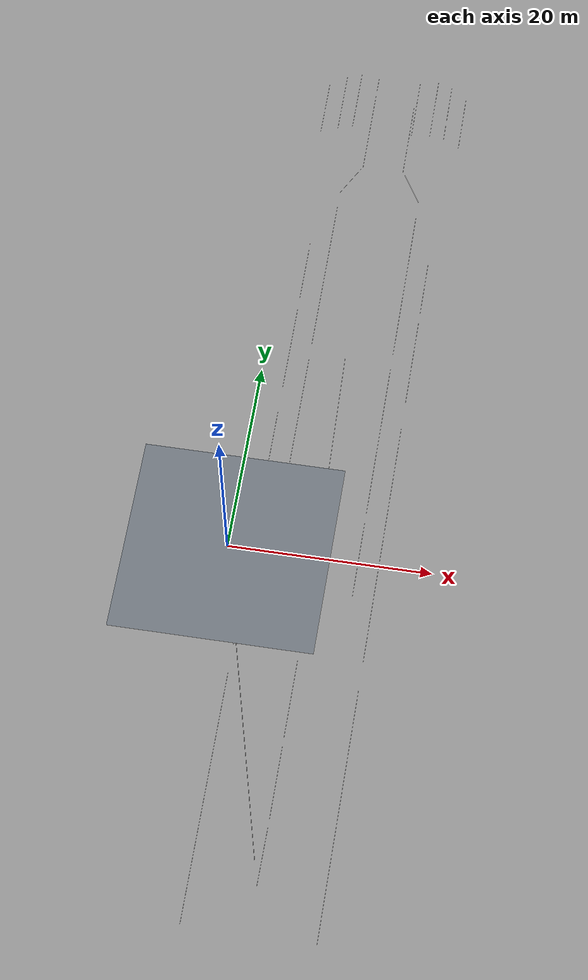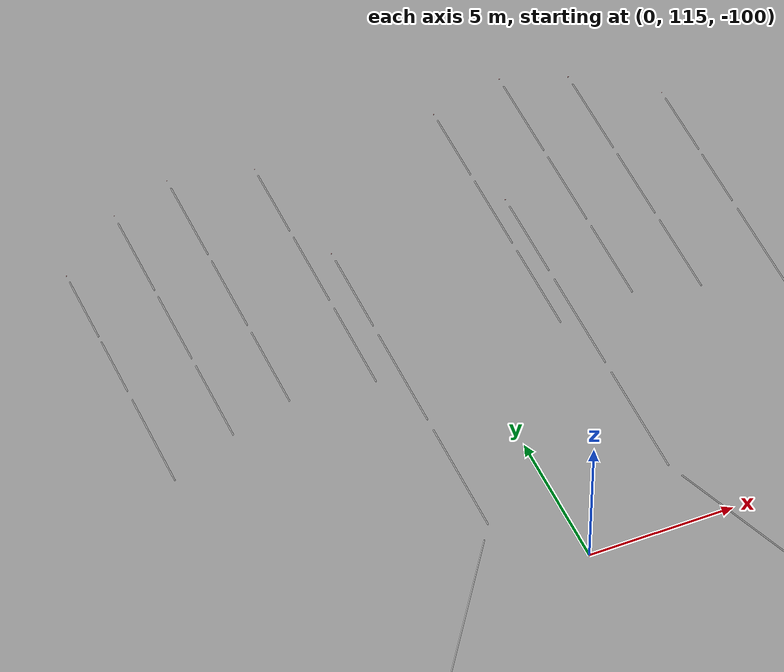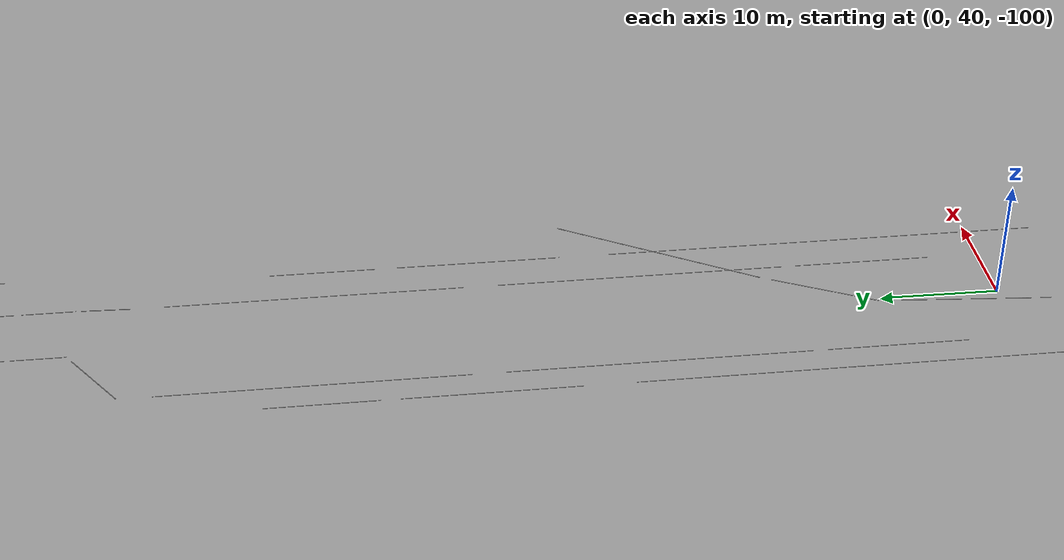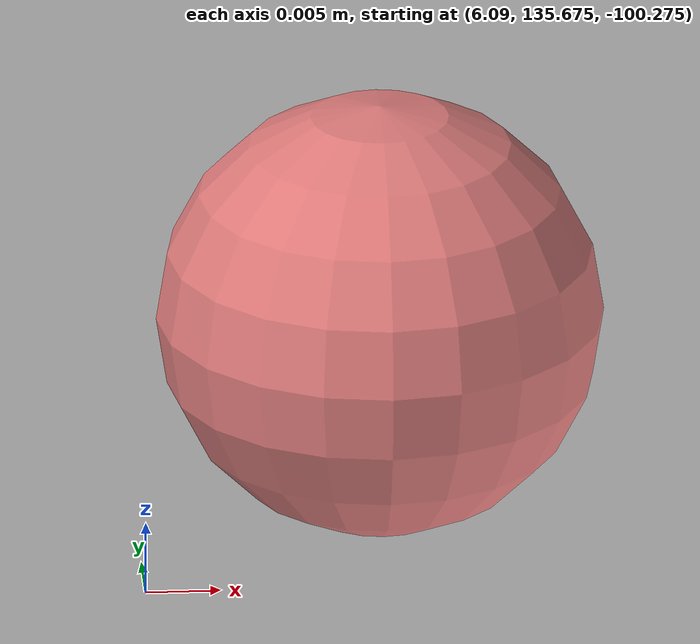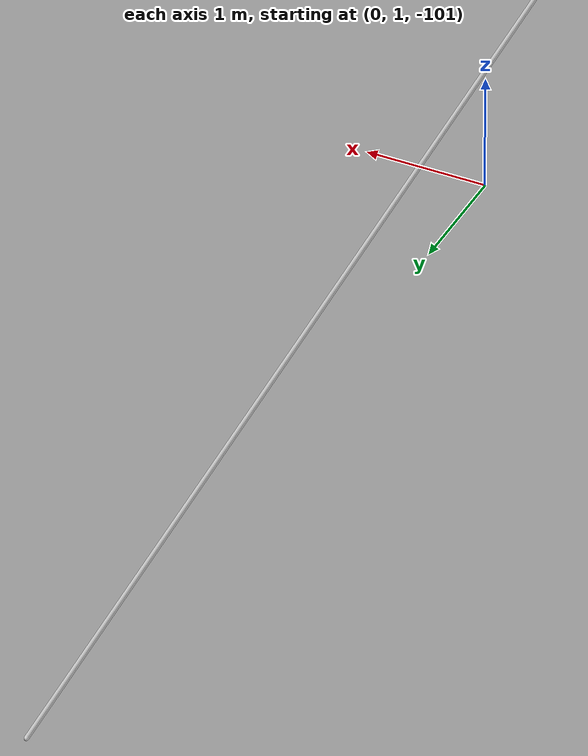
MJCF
<?xml version="1.0" ?>
<mujoco>
  <compiler angle="radian" autolimits="true"/>
  <option gravity="0 0 -9.81" timestep="0.01"/>
  <visual>
    <headlight diffuse="0.6 0.6 0.6" ambient="0.3 0.3 0.3" specular="0 0 0"/>
  </visual>
  <asset>
    <texture name="grid" type="2d" builtin="checker" width="512" height="512" rgb1="0.1 0.2 0.3" rgb2="0.2 0.3 0.4"/>
    <material name="grid" texture="grid" texrepeat="1 1" texuniform="true" reflectance="0.2"/>
  </asset>
  <worldbody>
    <geom name="floor" type="plane" size="10 10 0.1" material="grid" pos="0 0 0"/>
    <light name="spotlight" directional="true" diffuse="0.8 0.8 0.8" specular="0.2 0.2 0.2" pos="0 -2 4" dir="0 1 -1"/>
    <body name="Armature_body">
      <geom type="capsule" size="0.02" fromto="0 0 0 -6.081310175432009e-06 4.360266029834747e-05 -89.81274490356445" rgba="0.9 0.9 0.9 0.8"/>
      <joint name="Armature" type="free"/>
      <body name="mixamorig:Hips_body" pos="-6.757011306035565e-06 4.844740033149719e-05 -99.79193878173828">
        <geom type="capsule" size="0.02" fromto="0 0 0 0.0007738070329651236 8.93111572265625 -1.1046014785766602" rgba="0.9 0.9 0.9 0.8"/>
        <joint name="mixamorig:Hips" type="ball"/>
        <body name="mixamorig:Spine_body" pos="0.0008597855921834707 9.9234619140625 -1.227334976196289">
          <geom type="capsule" size="0.02" fromto="0 0 0 -1.0178609954891727e-09 10.55879259109497 1.0878766943278606e-06" rgba="0.9 0.9 0.9 0.8"/>
          <joint name="mixamorig:Spine" type="ball"/>
          <body name="mixamorig:Spine1_body" pos="-1.1309566616546363e-09 11.7319917678833 1.2087518825865118e-06">
            <geom type="capsule" size="0.02" fromto="0 0 0 -4.0272425394505263e-10 12.11296148300171 8.870238048075408e-07" rgba="0.9 0.9 0.9 0.8"/>
            <joint name="mixamorig:Spine1" type="ball"/>
            <body name="mixamorig:Spine2_body" pos="-4.474713932722807e-10 13.458846092224121 9.85582005341712e-07">
              <geom type="capsule" size="0.02" fromto="0 0 0 2.2932692263566424e-05 13.524966430664064 0.7901141881942749" rgba="0.9 0.9 0.9 0.8"/>
              <joint name="mixamorig:Spine2" type="ball"/>
              <body name="mixamorig:Neck_body" pos="2.548076918174047e-05 15.027740478515625 0.8779046535491943">
                <geom type="capsule" size="0.02" fromto="0 0 0 2.303892756572168e-06 9.289654541015626 2.8281859874725344" rgba="0.9 0.9 0.9 0.8"/>
                <joint name="mixamorig:Neck" type="ball"/>
                <body name="mixamorig:Head_body" pos="2.559880840635742e-06 10.32183837890625 3.1424288749694824">
                  <geom type="capsule" size="0.02" fromto="0 0 0 0.00013906541280448437 16.627217102050782 5.972760629653931" rgba="0.9 0.9 0.9 0.8"/>
                  <joint name="mixamorig:Head" type="ball"/>
                  <body name="mixamorig:HeadTop_End_body" pos="0.00015451712533831596 18.474685668945312 6.6364006996154785">
                    <geom type="sphere" size="0.015" rgba="1 0.5 0.5 0.8"/>
                    <joint name="mixamorig:HeadTop_End" type="ball"/>
                  </body>
                </body>
              </body>
              <body name="mixamorig:LeftShoulder_body" pos="6.1058244705200195 9.106250762939453 0.7570602893829346">
                <geom type="capsule" size="0.02" fromto="0 0 0 1.126527786254883e-06 11.630058288574219 1.8222925427835437e-05" rgba="0.9 0.9 0.9 0.8"/>
                <joint name="mixamorig:LeftShoulder" type="ball"/>
                <body name="mixamorig:LeftArm_body" pos="1.2516975402832031e-06 12.922286987304688 2.024769491981715e-05">
                  <geom type="capsule" size="0.02" fromto="0 0 0 1.2086262358934619e-05 24.66420879364014 1.1452820490376326e-05" rgba="0.9 0.9 0.9 0.8"/>
                  <joint name="mixamorig:LeftArm" type="ball"/>
                  <body name="mixamorig:LeftForeArm_body" pos="1.3429180398816243e-05 27.40467643737793 1.272535610041814e-05">
                    <geom type="capsule" size="0.02" fromto="0 0 0 -7.996532076504082e-08 24.853008842468263 1.254645974313462e-06" rgba="0.9 0.9 0.9 0.8"/>
                    <joint name="mixamorig:LeftForeArm" type="ball"/>
                    <body name="mixamorig:LeftHand_body" pos="-8.88503564056009e-08 27.61445426940918 1.3940510825705132e-06">
                      <geom type="capsule" size="0.02" fromto="0 0 0 -2.7026749134063723 3.4099399566650392 1.9504440307617188" rgba="0.9 0.9 0.9 0.8"/>
                      <joint name="mixamorig:LeftHand" type="ball"/>
                      <body name="mixamorig:LeftHandThumb1_body" pos="-3.00297212600708 3.7888221740722656 2.1671600341796875">
                        <geom type="capsule" size="0.02" fromto="0 0 0 -9.119510650634766e-07 4.270491313934326 1.291057096750592e-05" rgba="0.9 0.9 0.9 0.8"/>
                        <joint name="mixamorig:LeftHandThumb1" type="ball"/>
                        <body name="mixamorig:LeftHandThumb2_body" pos="-1.0132789611816406e-06 4.744990348815918 1.4345078852784354e-05">
                          <geom type="capsule" size="0.02" fromto="0 0 0 1.609325408935547e-07 3.943912410736084 -2.9100897154421546e-05" rgba="0.9 0.9 0.9 0.8"/>
                          <joint name="mixamorig:LeftHandThumb2" type="ball"/>
                          <body name="mixamorig:LeftHandThumb3_body" pos="1.7881393432617188e-07 4.382124900817871 -3.2334330171579495e-05">
                            <geom type="capsule" size="0.02" fromto="0 0 0 -7.832050323486328e-06 3.113167476654053 1.2322147449594923e-05" rgba="0.9 0.9 0.9 0.8"/>
                            <joint name="mixamorig:LeftHandThumb3" type="ball"/>
                            <body name="mixamorig:LeftHandThumb4_body" pos="-8.702278137207031e-06 3.4590749740600586 1.3691274943994358e-05">
                              <geom type="sphere" size="0.015" rgba="1 0.5 0.5 0.8"/>
                              <joint name="mixamorig:LeftHandThumb4" type="ball"/>
                            </body>
                          </body>
                        </body>
                      </body>
                      <body name="mixamorig:LeftHandIndex1_body" pos="-2.8220388889312744 12.266630172729492 0.2318211942911148">
                        <geom type="capsule" size="0.02" fromto="0 0 0 -2.251490514026955e-08 3.5027656316757203 4.517360821409966e-06" rgba="0.9 0.9 0.9 0.8"/>
                        <joint name="mixamorig:LeftHandIndex1" type="ball"/>
                        <body name="mixamorig:LeftHandIndex2_body" pos="-2.5016561266966164e-08 3.8919618129730225 5.019289801566629e-06">
                          <geom type="capsule" size="0.02" fromto="0 0 0 9.771792974788696e-08 3.0736454486846925 8.757184878049884e-06" rgba="0.9 0.9 0.9 0.8"/>
                          <joint name="mixamorig:LeftHandIndex2" type="ball"/>
                          <body name="mixamorig:LeftHandIndex3_body" pos="1.0857547749765217e-07 3.415161609649658 9.730205420055427e-06">
                            <geom type="capsule" size="0.02" fromto="0 0 0 -1.7367237887810917e-07 2.7702007055282594 1.1845235985674664e-05" rgba="0.9 0.9 0.9 0.8"/>
                            <joint name="mixamorig:LeftHandIndex3" type="ball"/>
                            <body name="mixamorig:LeftHandIndex4_body" pos="-1.9296930986456573e-07 3.078000783920288 1.3161373317416292e-05">
                              <geom type="sphere" size="0.015" rgba="1 0.5 0.5 0.8"/>
                              <joint name="mixamorig:LeftHandIndex4" type="ball"/>
                            </body>
                          </body>
                        </body>
                      </body>
                      <body name="mixamorig:LeftHandMiddle1_body" pos="-1.2575349501275923e-05 12.775538444519043 -7.516356617998099e-06">
                        <geom type="capsule" size="0.02" fromto="0 0 0 1.3747139746556058e-07 3.2525668144226074 -1.5646297697458067e-06" rgba="0.9 0.9 0.9 0.8"/>
                        <joint name="mixamorig:LeftHandMiddle1" type="ball"/>
                        <body name="mixamorig:LeftHandMiddle2_body" pos="1.527459971839562e-07 3.6139631271362305 -1.7384775219397852e-06">
                          <geom type="capsule" size="0.02" fromto="0 0 0 2.583628665888682e-05 3.1137914657592773 2.4645197754580294e-06" rgba="0.9 0.9 0.9 0.8"/>
                          <joint name="mixamorig:LeftHandMiddle2" type="ball"/>
                          <body name="mixamorig:LeftHandMiddle3_body" pos="2.870698517654091e-05 3.459768295288086 2.738355306064477e-06">
                            <geom type="capsule" size="0.02" fromto="0 0 0 -2.828269898600411e-05 3.3121745109558107 2.7363500521460084e-06" rgba="0.9 0.9 0.9 0.8"/>
                            <joint name="mixamorig:LeftHandMiddle3" type="ball"/>
                            <body name="mixamorig:LeftHandMiddle4_body" pos="-3.142522109556012e-05 3.6801939010620117 3.040388946828898e-06">
                              <geom type="sphere" size="0.015" rgba="1 0.5 0.5 0.8"/>
                              <joint name="mixamorig:LeftHandMiddle4" type="ball"/>
                            </body>
                          </body>
                        </body>
                      </body>
                      <body name="mixamorig:LeftHandRing1_body" pos="2.2166378498077393 12.147022247314453 -0.009996567852795124">
                        <geom type="capsule" size="0.02" fromto="0 0 0 5.718872671423015e-07 3.24105863571167 -1.330875393250608e-05" rgba="0.9 0.9 0.9 0.8"/>
                        <joint name="mixamorig:LeftHandRing1" type="ball"/>
                        <body name="mixamorig:LeftHandRing2_body" pos="6.354302968247794e-07 3.6011762619018555 -1.4787504369451199e-05">
                          <geom type="capsule" size="0.02" fromto="0 0 0 5.696158041246236e-07 2.976595401763916 4.049766448588343e-06" rgba="0.9 0.9 0.9 0.8"/>
                          <joint name="mixamorig:LeftHandRing2" type="ball"/>
                          <body name="mixamorig:LeftHandRing3_body" pos="6.329064490273595e-07 3.307328224182129 4.499740498431493e-06">
                            <geom type="capsule" size="0.02" fromto="0 0 0 -2.1083315368741753e-05 3.2940940618515016 2.928683788923081e-05" rgba="0.9 0.9 0.9 0.8"/>
                            <joint name="mixamorig:LeftHandRing3" type="ball"/>
                            <body name="mixamorig:LeftHandRing4_body" pos="-2.3425905965268612e-05 3.660104513168335 3.2540930988034233e-05">
                              <geom type="sphere" size="0.015" rgba="1 0.5 0.5 0.8"/>
                              <joint name="mixamorig:LeftHandRing4" type="ball"/>
                            </body>
                          </body>
                        </body>
                      </body>
                      <body name="mixamorig:LeftHandPinky1_body" pos="4.725837707519531 10.908201217651367 0.2261309176683426">
                        <geom type="capsule" size="0.02" fromto="0 0 0 9.759613021742553e-07 3.7229945182800295 1.276978118767147e-05" rgba="0.9 0.9 0.9 0.8"/>
                        <joint name="mixamorig:LeftHandPinky1" type="ball"/>
                        <body name="mixamorig:LeftHandPinky2_body" pos="1.0844014468602836e-06 4.136660575866699 1.418864576407941e-05">
                          <geom type="capsule" size="0.02" fromto="0 0 0 -5.509857146535069e-07 2.335337591171265 1.665888194111176e-05" rgba="0.9 0.9 0.9 0.8"/>
                          <joint name="mixamorig:LeftHandPinky2" type="ball"/>
                          <body name="mixamorig:LeftHandPinky3_body" pos="-6.122063496150076e-07 2.5948195457458496 1.850986882345751e-05">
                            <geom type="capsule" size="0.02" fromto="0 0 0 -1.1288000678177923e-06 2.6314796447753905 7.862596794439014e-06" rgba="0.9 0.9 0.9 0.8"/>
                            <joint name="mixamorig:LeftHandPinky3" type="ball"/>
                            <body name="mixamorig:LeftHandPinky4_body" pos="-1.2542222975753248e-06 2.9238662719726562 8.736218660487793e-06">
                              <geom type="sphere" size="0.015" rgba="1 0.5 0.5 0.8"/>
                              <joint name="mixamorig:LeftHandPinky4" type="ball"/>
                            </body>
                          </body>
                        </body>
                      </body>
                    </body>
                  </body>
                </body>
              </body>
              <body name="mixamorig:RightShoulder_body" pos="-6.105696201324463 9.106346130371094 0.7570735812187195">
                <geom type="capsule" size="0.02" fromto="0 0 0 -3.218650817871094e-07 11.630058288574219 1.17667726954096e-05" rgba="0.9 0.9 0.9 0.8"/>
                <joint name="mixamorig:RightShoulder" type="ball"/>
                <body name="mixamorig:RightArm_body" pos="-3.5762786865234375e-07 12.922286987304688 1.3074191883788444e-05">
                  <geom type="capsule" size="0.02" fromto="0 0 0 -6.85101895214757e-07 24.66419677734375 -1.9031518377232714e-06" rgba="0.9 0.9 0.9 0.8"/>
                  <joint name="mixamorig:RightArm" type="ball"/>
                  <body name="mixamorig:RightForeArm_body" pos="-7.612243280163966e-07 27.4046630859375 -2.114613153025857e-06">
                    <geom type="capsule" size="0.02" fromto="0 0 0 1.1941777665924747e-05 24.853001976013186 -7.042435754556209e-06" rgba="0.9 0.9 0.9 0.8"/>
                    <joint name="mixamorig:RightForeArm" type="ball"/>
                    <body name="mixamorig:RightHand_body" pos="1.3268641851027496e-05 27.61444664001465 -7.824928616173565e-06">
                      <geom type="capsule" size="0.02" fromto="0 0 0 2.7026770591735843 3.4099165678024295 1.9504436016082765" rgba="0.9 0.9 0.9 0.8"/>
                      <joint name="mixamorig:RightHand" type="ball"/>
                      <body name="mixamorig:RightHandThumb1_body" pos="3.002974510192871 3.7887961864471436 2.1671595573425293">
                        <geom type="capsule" size="0.02" fromto="0 0 0 9.495019912719727e-06 4.270459985733033 -4.02736957767047e-05" rgba="0.9 0.9 0.9 0.8"/>
                        <joint name="mixamorig:RightHandThumb1" type="ball"/>
                        <body name="mixamorig:RightHandThumb2_body" pos="1.055002212524414e-05 4.744955539703369 -4.474855086300522e-05">
                          <geom type="capsule" size="0.02" fromto="0 0 0 -5.257129669189453e-06 3.943939018249512 1.7378645134158435e-05" rgba="0.9 0.9 0.9 0.8"/>
                          <joint name="mixamorig:RightHandThumb2" type="ball"/>
                          <body name="mixamorig:RightHandThumb3_body" pos="-5.841255187988281e-06 4.38215446472168 1.930960570462048e-05">
                            <geom type="capsule" size="0.02" fromto="0 0 0 1.2767314910888673e-05 3.1131580352783206 -2.5162152451230212e-05" rgba="0.9 0.9 0.9 0.8"/>
                            <joint name="mixamorig:RightHandThumb3" type="ball"/>
                            <body name="mixamorig:RightHandThumb4_body" pos="1.4185905456542969e-05 3.459064483642578 -2.795794716803357e-05">
                              <geom type="sphere" size="0.015" rgba="1 0.5 0.5 0.8"/>
                              <joint name="mixamorig:RightHandThumb4" type="ball"/>
                            </body>
                          </body>
                        </body>
                      </body>
                      <body name="mixamorig:RightHandIndex1_body" pos="2.82204270362854 12.266603469848633 0.23182830214500427">
                        <geom type="capsule" size="0.02" fromto="0 0 0 1.0873503697439446e-07 3.5027729272842407 -5.754430685556145e-06" rgba="0.9 0.9 0.9 0.8"/>
                        <joint name="mixamorig:RightHandIndex1" type="ball"/>
                        <body name="mixamorig:RightHandIndex2_body" pos="1.2081670774932718e-07 3.891969919204712 -6.3938118728401605e-06">
                          <geom type="capsule" size="0.02" fromto="0 0 0 -1.176227888208814e-05 3.073642444610596 -1.032607578963507e-05" rgba="0.9 0.9 0.9 0.8"/>
                          <joint name="mixamorig:RightHandIndex2" type="ball"/>
                          <body name="mixamorig:RightHandIndex3_body" pos="-1.306919875787571e-05 3.415158271789551 -1.1473417544038966e-05">
                            <geom type="capsule" size="0.02" fromto="0 0 0 -2.2051608539186418e-08 2.7701820373535155 1.3939402924734167e-05" rgba="0.9 0.9 0.9 0.8"/>
                            <joint name="mixamorig:RightHandIndex3" type="ball"/>
                            <body name="mixamorig:RightHandIndex4_body" pos="-2.4501787265762687e-08 3.0779800415039062 1.5488225471926853e-05">
                              <geom type="sphere" size="0.015" rgba="1 0.5 0.5 0.8"/>
                              <joint name="mixamorig:RightHandIndex4" type="ball"/>
                            </body>
                          </body>
                        </body>
                      </body>
                      <body name="mixamorig:RightHandMiddle1_body" pos="1.6948150005191565e-05 12.775516510009766 1.8510041627450846e-05">
                        <geom type="capsule" size="0.02" fromto="0 0 0 -1.2093187251593918e-07 3.2525756120681764 -1.9208545154469903e-07" rgba="0.9 0.9 0.9 0.8"/>
                        <joint name="mixamorig:RightHandMiddle1" type="ball"/>
                        <body name="mixamorig:RightHandMiddle2_body" pos="-1.3436874723993242e-07 3.6139729022979736 -2.1342827949411003e-07">
                          <geom type="capsule" size="0.02" fromto="0 0 0 -2.6364002769696528e-05 3.1137818098068237 -4.592308459905325e-06" rgba="0.9 0.9 0.9 0.8"/>
                          <joint name="mixamorig:RightHandMiddle2" type="ball"/>
                          <body name="mixamorig:RightHandMiddle3_body" pos="-2.9293336410773918e-05 3.4597575664520264 -5.102564955450362e-06">
                            <geom type="capsule" size="0.02" fromto="0 0 0 2.582594843261177e-05 3.3121700048446656 -1.8375859144725837e-05" rgba="0.9 0.9 0.9 0.8"/>
                            <joint name="mixamorig:RightHandMiddle3" type="ball"/>
                            <body name="mixamorig:RightHandMiddle4_body" pos="2.869549825845752e-05 3.6801888942718506 -2.0417621271917596e-05">
                              <geom type="sphere" size="0.015" rgba="1 0.5 0.5 0.8"/>
                              <joint name="mixamorig:RightHandMiddle4" type="ball"/>
                            </body>
                          </body>
                        </body>
                      </body>
                      <body name="mixamorig:RightHandRing1_body" pos="-2.216632127761841 12.146989822387695 -0.009998287074267864">
                        <geom type="capsule" size="0.02" fromto="0 0 0 -2.2502340470964555e-07 3.2410800933837893 -6.976096244670771e-07" rgba="0.9 0.9 0.9 0.8"/>
                        <joint name="mixamorig:RightHandRing1" type="ball"/>
                        <body name="mixamorig:RightHandRing2_body" pos="-2.500260052329395e-07 3.6012001037597656 -7.75121804963419e-07">
                          <geom type="capsule" size="0.02" fromto="0 0 0 2.4702876544324683e-08 2.976574158668518 -4.175668527750532e-06" rgba="0.9 0.9 0.9 0.8"/>
                          <joint name="mixamorig:RightHandRing2" type="ball"/>
                          <body name="mixamorig:RightHandRing3_body" pos="2.74476406048052e-08 3.307304620742798 -4.63963169750059e-06">
                            <geom type="capsule" size="0.02" fromto="0 0 0 2.0595139903889504e-05 3.2941022157669066 3.4774126106640325e-06" rgba="0.9 0.9 0.9 0.8"/>
                            <joint name="mixamorig:RightHandRing3" type="ball"/>
                            <body name="mixamorig:RightHandRing4_body" pos="2.2883488782099448e-05 3.660113573074341 3.863791789626703e-06">
                              <geom type="sphere" size="0.015" rgba="1 0.5 0.5 0.8"/>
                              <joint name="mixamorig:RightHandRing4" type="ball"/>
                            </body>
                          </body>
                        </body>
                      </body>
                      <body name="mixamorig:RightHandPinky1_body" pos="-4.725833415985107 10.908178329467773 0.22613123059272766">
                        <geom type="capsule" size="0.02" fromto="0 0 0 -8.607469681010116e-07 3.7229803562164308 -4.826578970096307e-06" rgba="0.9 0.9 0.9 0.8"/>
                        <joint name="mixamorig:RightHandPinky1" type="ball"/>
                        <body name="mixamorig:RightHandPinky2_body" pos="-9.56385520112235e-07 4.1366448402404785 -5.36286552232923e-06">
                          <geom type="capsule" size="0.02" fromto="0 0 0 -6.600617780350148e-07 2.3353577613830567 -9.250882249034475e-06" rgba="0.9 0.9 0.9 0.8"/>
                          <joint name="mixamorig:RightHandPinky2" type="ball"/>
                          <body name="mixamorig:RightHandPinky3_body" pos="-7.33401975594461e-07 2.594841957092285 -1.027875805448275e-05">
                            <geom type="capsule" size="0.02" fromto="0 0 0 3.53128802998981e-07 2.631488871574402 -7.349665247602389e-06" rgba="0.9 0.9 0.9 0.8"/>
                            <joint name="mixamorig:RightHandPinky3" type="ball"/>
                            <body name="mixamorig:RightHandPinky4_body" pos="3.923653366655344e-07 2.9238765239715576 -8.16629471955821e-06">
                              <geom type="sphere" size="0.015" rgba="1 0.5 0.5 0.8"/>
                              <joint name="mixamorig:RightHandPinky4" type="ball"/>
                            </body>
                          </body>
                        </body>
                      </body>
                    </body>
                  </body>
                </body>
              </body>
            </body>
          </body>
        </body>
        <body name="mixamorig:LeftUpLeg_body" pos="9.123872756958008 -6.657196044921875 -0.055403102189302444">
          <geom type="capsule" size="0.02" fromto="0 0 0 -7.772160131480633e-07 36.53949394226074 -6.485497578978539e-08" rgba="0.9 0.9 0.9 0.8"/>
          <joint name="mixamorig:LeftUpLeg" type="ball"/>
          <body name="mixamorig:LeftLeg_body" pos="-8.635733479422925e-07 40.59943771362305 -7.206108421087265e-08">
            <geom type="capsule" size="0.02" fromto="0 0 0 -3.8893304576959054e-07 37.889123153686526 -3.671273589134216e-07" rgba="0.9 0.9 0.9 0.8"/>
            <joint name="mixamorig:LeftLeg" type="ball"/>
            <body name="mixamorig:LeftFoot_body" pos="-4.3214782863287837e-07 42.09902572631836 -4.079192876815796e-07">
              <geom type="capsule" size="0.02" fromto="0 0 0 1.0344052270738757e-06 14.14940528869629 8.046627044677734e-07" rgba="0.9 0.9 0.9 0.8"/>
              <joint name="mixamorig:LeftFoot" type="ball"/>
              <body name="mixamorig:LeftToeBase_body" pos="1.1493391411931952e-06 15.721561431884766 8.940696716308594e-07">
                <geom type="capsule" size="0.02" fromto="0 0 0 1.1298805475234986e-06 8.999998283386232 4.559755325317383e-07" rgba="0.9 0.9 0.9 0.8"/>
                <joint name="mixamorig:LeftToeBase" type="ball"/>
                <body name="mixamorig:LeftToe_End_body" pos="1.255422830581665e-06 9.999998092651367 5.066394805908203e-07">
                  <geom type="sphere" size="0.015" rgba="1 0.5 0.5 0.8"/>
                  <joint name="mixamorig:LeftToe_End" type="ball"/>
                </body>
              </body>
            </body>
          </body>
        </body>
        <body name="mixamorig:RightUpLeg_body" pos="-9.125032424926758 -6.655601501464844 -0.055352743715047836">
          <geom type="capsule" size="0.02" fromto="0 0 0 2.957081875365475e-07 36.53951454162598 1.3411045074462891e-08" rgba="0.9 0.9 0.9 0.8"/>
          <joint name="mixamorig:RightUpLeg" type="ball"/>
          <body name="mixamorig:RightLeg_body" pos="3.285646528183861e-07 40.59946060180664 1.4901161193847656e-08">
            <geom type="capsule" size="0.02" fromto="0 0 0 2.445380346216553e-07 37.889119720458986 -9.136274456977845e-08" rgba="0.9 0.9 0.9 0.8"/>
            <joint name="mixamorig:RightLeg" type="ball"/>
            <body name="mixamorig:RightFoot_body" pos="2.717089273573947e-07 42.099021911621094 -1.0151416063308716e-07">
              <geom type="capsule" size="0.02" fromto="0 0 0 1.4030786132934736e-07 14.149401855468751 3.460049629211426e-06" rgba="0.9 0.9 0.9 0.8"/>
              <joint name="mixamorig:RightFoot" type="ball"/>
              <body name="mixamorig:RightToeBase_body" pos="1.5589762369927485e-07 15.7215576171875 3.844499588012695e-06">
                <geom type="capsule" size="0.02" fromto="0 0 0 -7.37607479095459e-08 9.00000171661377 4.96208667755127e-07" rgba="0.9 0.9 0.9 0.8"/>
                <joint name="mixamorig:RightToeBase" type="ball"/>
                <body name="mixamorig:RightToe_End_body" pos="-8.195638656616211e-08 10.000001907348633 5.513429641723633e-07">
                  <geom type="sphere" size="0.015" rgba="1 0.5 0.5 0.8"/>
                  <joint name="mixamorig:RightToe_End" type="ball"/>
                </body>
              </body>
            </body>
          </body>
        </body>
      </body>
    </body>
  </worldbody>
  <actuator>
    <motor name="Armature_motor" joint="Armature" gear="250" ctrllimited="true" ctrlrange="-1 1"/>
    <motor name="mixamorig:Head_motor" joint="mixamorig:Head" gear="100" ctrllimited="true" ctrlrange="-1 1"/>
    <motor name="mixamorig:HeadTop_End_motor" joint="mixamorig:HeadTop_End" gear="100" ctrllimited="true" ctrlrange="-1 1"/>
    <motor name="mixamorig:Hips_motor" joint="mixamorig:Hips" gear="100" ctrllimited="true" ctrlrange="-1 1"/>
    <motor name="mixamorig:LeftArm_motor" joint="mixamorig:LeftArm" gear="100" ctrllimited="true" ctrlrange="-1 1"/>
    <motor name="mixamorig:LeftFoot_motor" joint="mixamorig:LeftFoot" gear="100" ctrllimited="true" ctrlrange="-1 1"/>
    <motor name="mixamorig:LeftForeArm_motor" joint="mixamorig:LeftForeArm" gear="100" ctrllimited="true" ctrlrange="-1 1"/>
    <motor name="mixamorig:LeftHand_motor" joint="mixamorig:LeftHand" gear="100" ctrllimited="true" ctrlrange="-1 1"/>
    <motor name="mixamorig:LeftHandIndex1_motor" joint="mixamorig:LeftHandIndex1" gear="100" ctrllimited="true" ctrlrange="-1 1"/>
    <motor name="mixamorig:LeftHandIndex2_motor" joint="mixamorig:LeftHandIndex2" gear="100" ctrllimited="true" ctrlrange="-1 1"/>
    <motor name="mixamorig:LeftHandIndex3_motor" joint="mixamorig:LeftHandIndex3" gear="100" ctrllimited="true" ctrlrange="-1 1"/>
    <motor name="mixamorig:LeftHandIndex4_motor" joint="mixamorig:LeftHandIndex4" gear="100" ctrllimited="true" ctrlrange="-1 1"/>
    <motor name="mixamorig:LeftHandMiddle1_motor" joint="mixamorig:LeftHandMiddle1" gear="100" ctrllimited="true" ctrlrange="-1 1"/>
    <motor name="mixamorig:LeftHandMiddle2_motor" joint="mixamorig:LeftHandMiddle2" gear="100" ctrllimited="true" ctrlrange="-1 1"/>
    <motor name="mixamorig:LeftHandMiddle3_motor" joint="mixamorig:LeftHandMiddle3" gear="100" ctrllimited="true" ctrlrange="-1 1"/>
    <motor name="mixamorig:LeftHandMiddle4_motor" joint="mixamorig:LeftHandMiddle4" gear="100" ctrllimited="true" ctrlrange="-1 1"/>
    <motor name="mixamorig:LeftHandPinky1_motor" joint="mixamorig:LeftHandPinky1" gear="100" ctrllimited="true" ctrlrange="-1 1"/>
    <motor name="mixamorig:LeftHandPinky2_motor" joint="mixamorig:LeftHandPinky2" gear="100" ctrllimited="true" ctrlrange="-1 1"/>
    <motor name="mixamorig:LeftHandPinky3_motor" joint="mixamorig:LeftHandPinky3" gear="100" ctrllimited="true" ctrlrange="-1 1"/>
    <motor name="mixamorig:LeftHandPinky4_motor" joint="mixamorig:LeftHandPinky4" gear="100" ctrllimited="true" ctrlrange="-1 1"/>
    <motor name="mixamorig:LeftHandRing1_motor" joint="mixamorig:LeftHandRing1" gear="100" ctrllimited="true" ctrlrange="-1 1"/>
    <motor name="mixamorig:LeftHandRing2_motor" joint="mixamorig:LeftHandRing2" gear="100" ctrllimited="true" ctrlrange="-1 1"/>
    <motor name="mixamorig:LeftHandRing3_motor" joint="mixamorig:LeftHandRing3" gear="100" ctrllimited="true" ctrlrange="-1 1"/>
    <motor name="mixamorig:LeftHandRing4_motor" joint="mixamorig:LeftHandRing4" gear="100" ctrllimited="true" ctrlrange="-1 1"/>
    <motor name="mixamorig:LeftHandThumb1_motor" joint="mixamorig:LeftHandThumb1" gear="100" ctrllimited="true" ctrlrange="-1 1"/>
    <motor name="mixamorig:LeftHandThumb2_motor" joint="mixamorig:LeftHandThumb2" gear="100" ctrllimited="true" ctrlrange="-1 1"/>
    <motor name="mixamorig:LeftHandThumb3_motor" joint="mixamorig:LeftHandThumb3" gear="100" ctrllimited="true" ctrlrange="-1 1"/>
    <motor name="mixamorig:LeftHandThumb4_motor" joint="mixamorig:LeftHandThumb4" gear="100" ctrllimited="true" ctrlrange="-1 1"/>
    <motor name="mixamorig:LeftLeg_motor" joint="mixamorig:LeftLeg" gear="100" ctrllimited="true" ctrlrange="-1 1"/>
    <motor name="mixamorig:LeftShoulder_motor" joint="mixamorig:LeftShoulder" gear="100" ctrllimited="true" ctrlrange="-1 1"/>
    <motor name="mixamorig:LeftToeBase_motor" joint="mixamorig:LeftToeBase" gear="100" ctrllimited="true" ctrlrange="-1 1"/>
    <motor name="mixamorig:LeftToe_End_motor" joint="mixamorig:LeftToe_End" gear="100" ctrllimited="true" ctrlrange="-1 1"/>
    <motor name="mixamorig:LeftUpLeg_motor" joint="mixamorig:LeftUpLeg" gear="100" ctrllimited="true" ctrlrange="-1 1"/>
    <motor name="mixamorig:Neck_motor" joint="mixamorig:Neck" gear="100" ctrllimited="true" ctrlrange="-1 1"/>
    <motor name="mixamorig:RightArm_motor" joint="mixamorig:RightArm" gear="100" ctrllimited="true" ctrlrange="-1 1"/>
    <motor name="mixamorig:RightFoot_motor" joint="mixamorig:RightFoot" gear="100" ctrllimited="true" ctrlrange="-1 1"/>
    <motor name="mixamorig:RightForeArm_motor" joint="mixamorig:RightForeArm" gear="100" ctrllimited="true" ctrlrange="-1 1"/>
    <motor name="mixamorig:RightHand_motor" joint="mixamorig:RightHand" gear="100" ctrllimited="true" ctrlrange="-1 1"/>
    <motor name="mixamorig:RightHandIndex1_motor" joint="mixamorig:RightHandIndex1" gear="100" ctrllimited="true" ctrlrange="-1 1"/>
    <motor name="mixamorig:RightHandIndex2_motor" joint="mixamorig:RightHandIndex2" gear="100" ctrllimited="true" ctrlrange="-1 1"/>
    <motor name="mixamorig:RightHandIndex3_motor" joint="mixamorig:RightHandIndex3" gear="100" ctrllimited="true" ctrlrange="-1 1"/>
    <motor name="mixamorig:RightHandIndex4_motor" joint="mixamorig:RightHandIndex4" gear="100" ctrllimited="true" ctrlrange="-1 1"/>
    <motor name="mixamorig:RightHandMiddle1_motor" joint="mixamorig:RightHandMiddle1" gear="100" ctrllimited="true" ctrlrange="-1 1"/>
    <motor name="mixamorig:RightHandMiddle2_motor" joint="mixamorig:RightHandMiddle2" gear="100" ctrllimited="true" ctrlrange="-1 1"/>
    <motor name="mixamorig:RightHandMiddle3_motor" joint="mixamorig:RightHandMiddle3" gear="100" ctrllimited="true" ctrlrange="-1 1"/>
    <motor name="mixamorig:RightHandMiddle4_motor" joint="mixamorig:RightHandMiddle4" gear="100" ctrllimited="true" ctrlrange="-1 1"/>
    <motor name="mixamorig:RightHandPinky1_motor" joint="mixamorig:RightHandPinky1" gear="100" ctrllimited="true" ctrlrange="-1 1"/>
    <motor name="mixamorig:RightHandPinky2_motor" joint="mixamorig:RightHandPinky2" gear="100" ctrllimited="true" ctrlrange="-1 1"/>
    <motor name="mixamorig:RightHandPinky3_motor" joint="mixamorig:RightHandPinky3" gear="100" ctrllimited="true" ctrlrange="-1 1"/>
    <motor name="mixamorig:RightHandPinky4_motor" joint="mixamorig:RightHandPinky4" gear="100" ctrllimited="true" ctrlrange="-1 1"/>
    <motor name="mixamorig:RightHandRing1_motor" joint="mixamorig:RightHandRing1" gear="100" ctrllimited="true" ctrlrange="-1 1"/>
    <motor name="mixamorig:RightHandRing2_motor" joint="mixamorig:RightHandRing2" gear="100" ctrllimited="true" ctrlrange="-1 1"/>
    <motor name="mixamorig:RightHandRing3_motor" joint="mixamorig:RightHandRing3" gear="100" ctrllimited="true" ctrlrange="-1 1"/>
    <motor name="mixamorig:RightHandRing4_motor" joint="mixamorig:RightHandRing4" gear="100" ctrllimited="true" ctrlrange="-1 1"/>
    <motor name="mixamorig:RightHandThumb1_motor" joint="mixamorig:RightHandThumb1" gear="100" ctrllimited="true" ctrlrange="-1 1"/>
    <motor name="mixamorig:RightHandThumb2_motor" joint="mixamorig:RightHandThumb2" gear="100" ctrllimited="true" ctrlrange="-1 1"/>
    <motor name="mixamorig:RightHandThumb3_motor" joint="mixamorig:RightHandThumb3" gear="100" ctrllimited="true" ctrlrange="-1 1"/>
    <motor name="mixamorig:RightHandThumb4_motor" joint="mixamorig:RightHandThumb4" gear="100" ctrllimited="true" ctrlrange="-1 1"/>
    <motor name="mixamorig:RightLeg_motor" joint="mixamorig:RightLeg" gear="100" ctrllimited="true" ctrlrange="-1 1"/>
    <motor name="mixamorig:RightShoulder_motor" joint="mixamorig:RightShoulder" gear="100" ctrllimited="true" ctrlrange="-1 1"/>
    <motor name="mixamorig:RightToeBase_motor" joint="mixamorig:RightToeBase" gear="100" ctrllimited="true" ctrlrange="-1 1"/>
    <motor name="mixamorig:RightToe_End_motor" joint="mixamorig:RightToe_End" gear="100" ctrllimited="true" ctrlrange="-1 1"/>
    <motor name="mixamorig:RightUpLeg_motor" joint="mixamorig:RightUpLeg" gear="100" ctrllimited="true" ctrlrange="-1 1"/>
    <motor name="mixamorig:Spine_motor" joint="mixamorig:Spine" gear="100" ctrllimited="true" ctrlrange="-1 1"/>
    <motor name="mixamorig:Spine1_motor" joint="mixamorig:Spine1" gear="100" ctrllimited="true" ctrlrange="-1 1"/>
    <motor name="mixamorig:Spine2_motor" joint="mixamorig:Spine2" gear="100" ctrllimited="true" ctrlrange="-1 1"/>
  </actuator>
</mujoco>
